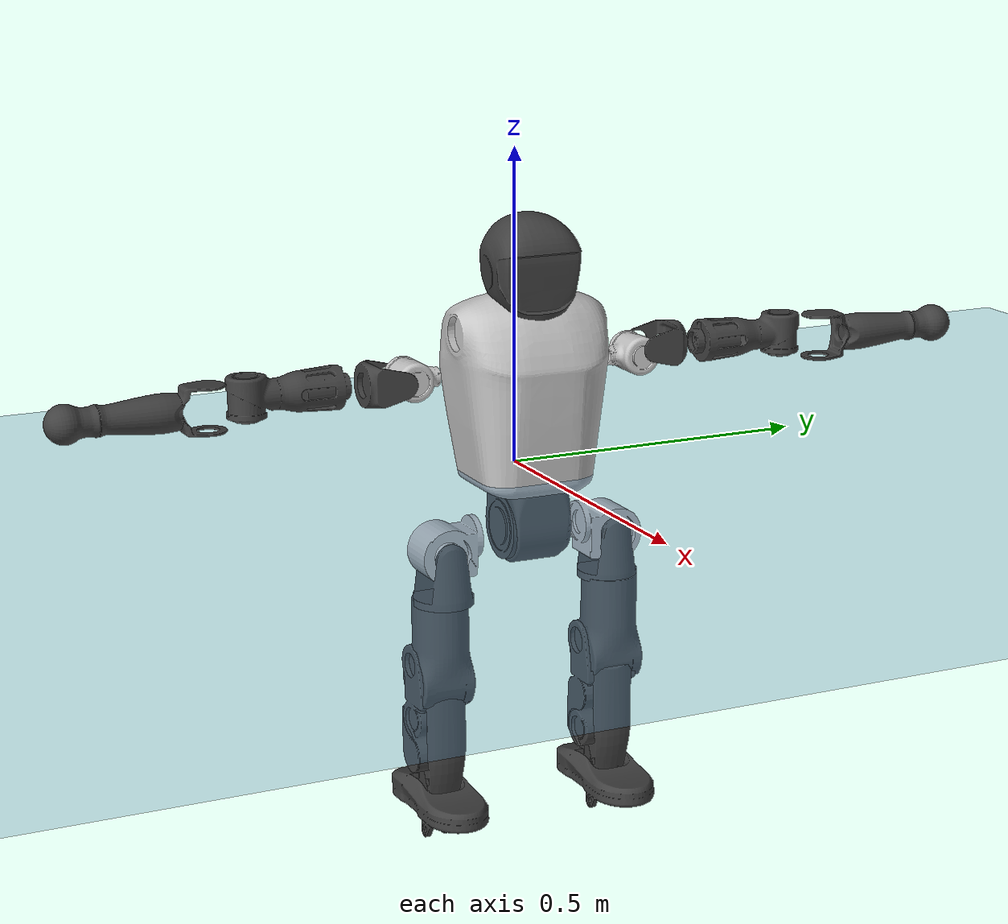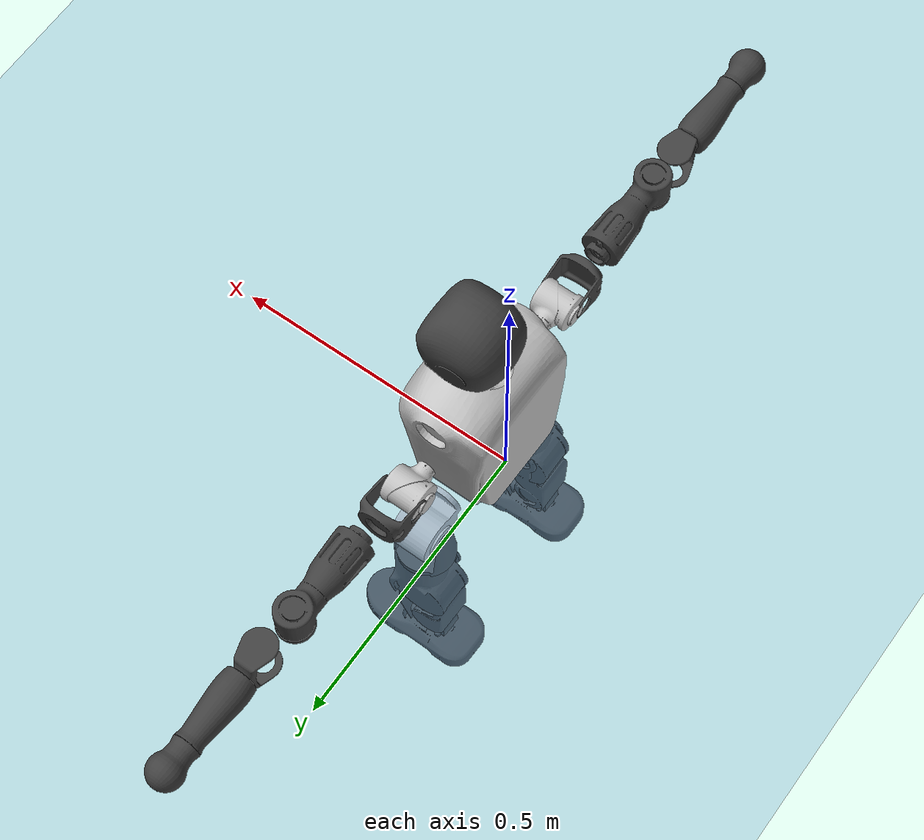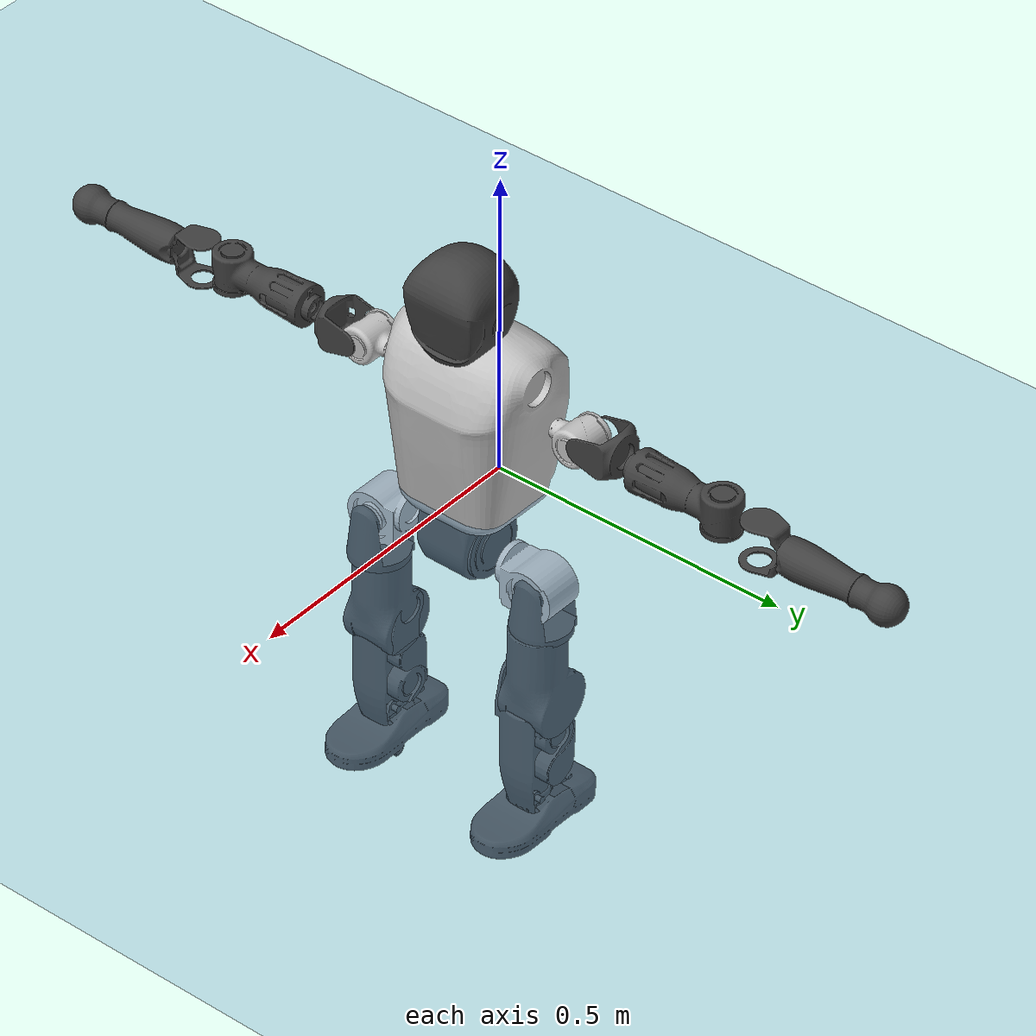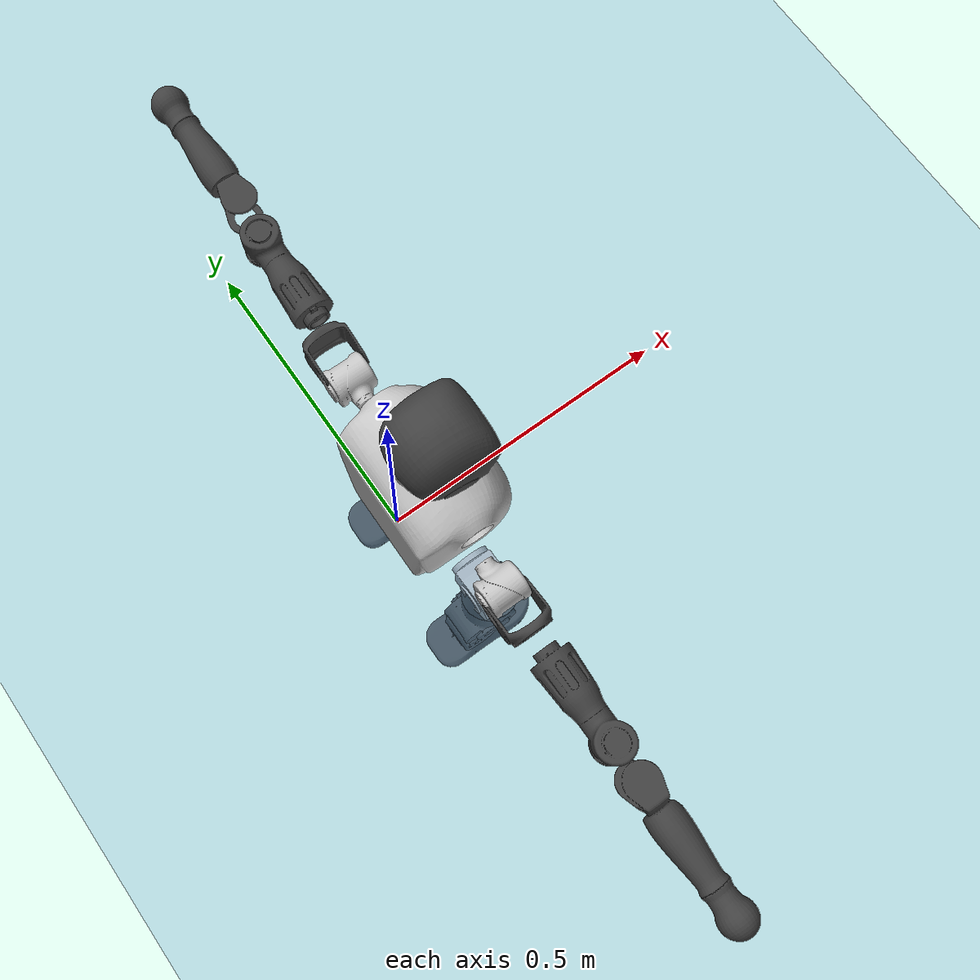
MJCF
<mujoco model="T1">
  <compiler angle="radian" assetdir="assets" balanceinertia="true" inertiafromgeom="false"/>

  <option timestep="0.005" density="1.2" viscosity="2e-05"/>

  <size nkey="1"/>

  <visual>
    <quality shadowsize="8192"/>
    <map shadowclip="0.5"/>
  </visual>

  <default>
    <default class="/">
      <joint armature="0.01" damping="0.01" frictionloss="0.1"/>
      <geom contype="0" conaffinity="0" group="1" solref="-1000 -80"/>
      <site size="0.01 0.005 0.005" group="5"/>
      <general forcelimited="true" biastype="affine" gainprm="25" biasprm="0 -25 -0.6"/>
      <default class="t1">
        <geom rgba="0.25 0.25 0.25 1"/>
        <default class="visual">
          <geom type="mesh" group="2"/>
        </default>
        <default class="collision">
          <geom group="3"/>
        </default>
        <default class="foot">
          <geom size="0.1115 0.05 0.015" type="box" condim="6" group="4" priority="1" solimp="0.015 1 0.015"/>
        </default>
        <default class="reward_collision_sphere">
          <geom group="5" rgba="1 0 0 1"/>
        </default>
      </default>
    </default>
  </default>

  <asset>
    <texture type="skybox" colorspace="auto" name="//unnamed_texture_0" builtin="gradient" rgb1="0.95 0.95 0.95" rgb2="0.95 0.95 0.95" width="100" height="600"/>
    <texture type="2d" colorspace="auto" name="texplane" builtin="checker" rgb1="0.345 0.575 0.748" rgb2="0.345 0.575 0.748" markrgb="1 1 1" width="512" height="512"/>
    <material name="MatPlane" class="/" texture="texplane" texuniform="true" texrepeat="2 2" specular="0.9"/>
    <mesh name="Trunk" class="/" file="Trunk.stl"/>
    <mesh name="H1" class="/" file="H1.stl"/>
    <mesh name="H2" class="/" file="H2.stl"/>
    <mesh name="AL1" class="/" file="AL1.stl"/>
    <mesh name="AL2" class="/" file="AL2.stl"/>
    <mesh name="AL3" class="/" file="AL3.stl"/>
    <mesh name="left_hand_link" class="/" file="left_hand_link.stl"/>
    <mesh name="AR1" class="/" file="AR1.stl"/>
    <mesh name="AR2" class="/" file="AR2.stl"/>
    <mesh name="AR3" class="/" file="AR3.stl"/>
    <mesh name="right_hand_link" class="/" file="right_hand_link.stl"/>
    <mesh name="Waist" class="/" file="Waist.stl"/>
    <mesh name="Hip_Pitch_Left" class="/" file="Hip_Pitch_Left.stl"/>
    <mesh name="Hip_Roll_Left" class="/" file="Hip_Roll_Left.stl"/>
    <mesh name="Hip_Yaw_Left" class="/" file="Hip_Yaw_Left.stl"/>
    <mesh name="Shank_Left" class="/" file="Shank_Left.stl"/>
    <mesh name="Ankle_Cross_Left" class="/" file="Ankle_Cross_Left.stl"/>
    <mesh name="left_foot_link" class="/" file="left_foot_link.stl"/>
    <mesh name="Hip_Pitch_Right" class="/" file="Hip_Pitch_Right.stl"/>
    <mesh name="Hip_Roll_Right" class="/" file="Hip_Roll_Right.stl"/>
    <mesh name="Hip_Yaw_Right" class="/" file="Hip_Yaw_Right.stl"/>
    <mesh name="Shank_Right" class="/" file="Shank_Right.stl"/>
    <mesh name="Ankle_Cross_Right" class="/" file="Ankle_Cross_Right.stl"/>
    <mesh name="right_foot_link" class="/" file="right_foot_link.stl"/>
  </asset>

  <worldbody>
    <geom name="floor" class="/" size="100 100 0.125" type="plane" group="0" material="MatPlane"/>
    <light name="toplight_shadow" class="/" pos="0 0 5" dir="0.0990148 0.0990148 -0.990148" type="directional" ambient="0.04 0.04 0.04" diffuse="0.55 0.55 0.55" specular="0.12 0.12 0.12"/>
    <light name="toplight_fill" class="/" pos="0 0 5" dir="0.0990148 0.0990148 -0.990148" type="directional" castshadow="false" ambient="0.04 0.04 0.04" diffuse="0.3 0.3 0.3" specular="0.08 0.08 0.08"/>
    <body name="trunk" childclass="t1" pos="-0.00126855 -0.00587389 0.0102234" quat="0.999984 -0.00202966 -0.00219623 -0.00472078">
      <inertial pos="0.0571639 -0.000365462 0.0793464" quat="0.99997 -0.00220597 -0.00740266 -8.25885e-06" mass="15.2522" diaginertia="0.118723 0.455089 0.0145954"/>
      <joint name="//unnamed_joint_0" type="free" armature="0" damping="0" frictionloss="0"/>
      <geom name="//unnamed_geom_1" class="visual" rgba="0.76 0.76 0.76 1" mesh="Trunk"/>
      <geom name="//unnamed_geom_2" class="collision" size="0.0792326 0.105643 0.158465" pos="0.0611556 0 0.0887345" type="box"/>
      <geom name="//unnamed_geom_3" class="reward_collision_sphere" size="0.12149" pos="0.0611556 0 0.0739454"/>
      <geom name="//unnamed_geom_4" class="reward_collision_sphere" size="0.0158465" pos="0.0611556 0.1199 0"/>
      <geom name="//unnamed_geom_5" class="reward_collision_sphere" size="0.0158465" pos="0.0611556 -0.1199 0"/>
      <geom name="//unnamed_geom_6" class="reward_collision_sphere" size="0.0158465" pos="0.0611556 0.150933 0.133102"/>
      <geom name="//unnamed_geom_7" class="reward_collision_sphere" size="0.0158465" pos="0.0611556 -0.150933 0.133102"/>
      <site name="imu" pos="0.0501242 -0.00526479 -0.00813554" size="0.0105643"/>
      <camera name="track" pos="0 -2.82118 0" quat="0.707107 0.707107 0 0" mode="trackcom"/>
      <camera name="ego_camera" pos="0.12435 0 0.310571" quat="-0.5 -0.5 0.5 0.5"/>
      <body name="H1" pos="0.0575501 -0.00117623 0.173078" quat="0.999989 0.0026439 -0.0037393 0.00130248">
        <inertial pos="-0.00839108 -0.0061674 0.0413605" quat="0.76442 -0.0187474 -0.00335935 0.644437" mass="0.484623" diaginertia="0.000249993 0.00110744 3.57424e-05"/>
        <joint name="AAHead_yaw" pos="0 0 0" axis="-0.00254525 -0.00615605 0.999978" range="-1.3339 1.59996" armature="0.0111231" damping="0.0267384" frictionloss="0.0904906"/>
        <geom name="//unnamed_geom_8" class="visual" mesh="H1"/>
        <body name="H2" pos="0.000932305 -0.00144469 0.0387764" quat="0.999986 0.000816786 -0.000552602 -0.00526374">
          <inertial pos="0.00737729 0.00150512 0.0716353" quat="0.988481 0.10533 -0.0764616 -0.0772261" mass="0.8613" diaginertia="0.00247022 0.0119393 0.000385468"/>
          <joint name="Head_pitch" pos="0 0 0" axis="-0.047854 -0.998799 -0.0105225" stiffness="0.0174518" range="-1.08198 0.147039" armature="0.00606072" damping="0" frictionloss="0.0489462"/>
          <geom name="//unnamed_geom_9" class="visual" mesh="H2"/>
          <geom name="//unnamed_geom_10" class="collision" size="0.0845147" pos="0.0101926 0 0.08134"/>
          <geom name="//unnamed_geom_11" class="reward_collision_sphere" size="0.0950791" pos="0.0203852 0 0.0739454"/>
        </body>
      </body>
      <body name="AL1" pos="0.0483806 0.144847 0.157547" quat="1 0.000308676 -0.000185885 -0.000204675">
        <inertial pos="0.0102572 0.0667236 0.00386266" quat="0.500546 0.520029 -0.479012 0.499571" mass="0.66702" diaginertia="0.00157462 0.00656417 6.80548e-05"/>
        <joint name="Left_Shoulder_Pitch" pos="0 0 0" axis="-0.00374986 0.999987 -0.00357846" stiffness="0.00427296" range="-3.30763 1.2268" armature="0.010987" damping="0" frictionloss="0.12213"/>
        <geom name="//unnamed_geom_12" class="visual" rgba="0.76 0.76 0.76 1" mesh="AL1"/>
        <body name="AL2" pos="-0.000316302 0.0692629 0.0108495" quat="0.999987 0.00234912 0.00358928 -0.00267277">
          <inertial pos="0.00679452 0.0515337 0.00888049" quat="0.483373 0.522851 -0.492378 0.500541" mass="0.174517" diaginertia="0.000457653 0.00210923 3.92921e-05"/>
          <joint name="Left_Shoulder_Roll" pos="0 0 0" axis="-0.998689 -0.031394 0.0404365" range="-1.5389 1.75731" armature="0.0107709" damping="0.00907575" frictionloss="0.159302"/>
          <geom name="//unnamed_geom_13" class="visual" mesh="AL2"/>
          <body name="AL3" pos="0.0105556 0.0893407 0.00059568" quat="1 0.000266334 0.000540503 -0.000425417">
            <inertial pos="0.000200543 0.120754 -0.00915192" quat="0.706084 0.708113 -0.00262202 0.00382" mass="1.17367" diaginertia="0.0134473 0.0700212 0.000144313"/>
            <joint name="Left_Elbow_Pitch" pos="0 0 0" axis="-0.0456038 -0.998888 0.0119573" range="-2.27633 2.26141" armature="0.0116663" damping="0.00322889" frictionloss="0.0884321"/>
            <geom name="//unnamed_geom_14" class="visual" mesh="AL3"/>
            <geom name="//unnamed_geom_15" class="collision" size="0.031693 0.0792326" pos="0 0.0705294 0" quat="0.707105 0.707108 0 0" type="cylinder"/>
            <geom name="//unnamed_geom_16" class="reward_collision_sphere" size="0.0380316"/>
            <body name="left_hand_link" pos="0.00599369 0.217131 -0.0111503" quat="0.999999 0.00092846 -0.00061416 0.000577919">
              <inertial pos="-0.000576236 0.150751 -0.00642887" quat="0.712656 0.701494 -0.00495559 0.00183275" mass="0.346622" diaginertia="0.00877137 0.0361207 4.08828e-05"/>
              <joint name="Left_Elbow_Yaw" pos="0 0 0" axis="-0.0279566 -0.0346973 0.999007" stiffness="0.0331165" range="-2.47994 0.0365861" armature="0.0111722" damping="0.0170469" frictionloss="0.0754662"/>
              <geom name="//unnamed_geom_17" class="visual" mesh="left_hand_link"/>
              <geom name="//unnamed_geom_18" class="collision" size="0.031693 0.092438" pos="0 0.183376 0" quat="0.707105 0.707108 0 0" type="cylinder"/>
              <geom name="//unnamed_geom_19" class="reward_collision_sphere" size="0.0528217"/>
              <geom name="//unnamed_geom_20" class="reward_collision_sphere" size="0.0369752" pos="0 0.155165 0"/>
              <geom name="//unnamed_geom_21" class="reward_collision_sphere" size="0.0369752" pos="0 0.303277 0"/>
            </body>
          </body>
        </body>
      </body>
      <body name="AR1" pos="0.0512045 -0.147888 0.153584" quat="0.999989 -0.00028333 -6.24743e-05 0.00470737">
        <inertial pos="-0.000726463 -0.0597884 -0.00070072" quat="0.517354 0.486111 -0.509718 0.486034" mass="0.630516" diaginertia="0.00170503 0.00758458 6.53159e-05"/>
        <joint name="Right_Shoulder_Pitch" pos="0 0 0" axis="0.00500953 -0.999976 -0.00477457" stiffness="0.0427919" range="-1.21395 3.19217" armature="0.0113329" damping="0.0475738" frictionloss="0.110766"/>
        <geom name="//unnamed_geom_22" class="visual" rgba="0.76 0.76 0.76 1" mesh="AR1"/>
        <body name="AR2" pos="-0.00108907 -0.0680239 -0.00163339" quat="0.999996 0.00253583 -0.00116096 -9.80621e-06">
          <inertial pos="0.00698734 -0.0522037 -0.00621801" quat="0.511667 0.484359 -0.518819 0.48417" mass="0.210216" diaginertia="0.000380898 0.00192714 4.35472e-05"/>
          <joint name="Right_Shoulder_Roll" pos="0 0 0" axis="-0.99995 -0.00857914 -0.00519467" range="-1.76692 1.59857" armature="0.010172" damping="0" frictionloss="0.0589049"/>
          <geom name="//unnamed_geom_23" class="visual" mesh="AR2"/>
          <body name="AR3" pos="-0.000625151 -0.0935355 0.00184238" quat="1 -4.70753e-05 7.86225e-05 -0.000623242">
            <inertial pos="0.0107328 -0.118332 -0.000731669" quat="0.704163 0.709275 -0.020764 -0.0255472" mass="1.04972" diaginertia="0.0151789 0.0786957 0.000136772"/>
            <joint name="Right_Elbow_Pitch" pos="0 0 0" axis="0.0220207 0.999753 -0.00306621" stiffness="0.0561329" range="-2.28499 2.35491" armature="0.0148892" damping="0.0113171" frictionloss="0.100231"/>
            <geom name="//unnamed_geom_24" class="visual" mesh="AR3"/>
            <geom name="//unnamed_geom_25" class="collision" size="0.031693 0.0792326" pos="0 -0.0705294 0" quat="0.707105 0.707108 0 0" type="cylinder"/>
            <geom name="//unnamed_geom_26" class="reward_collision_sphere" size="0.0380316"/>
            <body name="right_hand_link" pos="-0.000883936 -0.207809 -0.0108565" quat="1 0.000260152 -0.000128168 0.000498206">
              <inertial pos="0.00603849 -0.161764 0.00222799" quat="0.708671 0.705496 0.00101004 -0.0077766" mass="0.407054" diaginertia="0.00910697 0.0493995 4.7419e-05"/>
              <joint name="Right_Elbow_Yaw" pos="0 0 0" axis="0.00731052 0.00738021 0.999946" stiffness="0.00660983" range="-0.023628 2.4261" armature="0.0119615" damping="0.0269793" frictionloss="0.113389"/>
              <geom name="//unnamed_geom_27" class="visual" mesh="right_hand_link"/>
              <geom name="//unnamed_geom_28" class="collision" size="0.031693 0.092438" pos="0 -0.183376 0" quat="0.707105 0.707108 0 0" type="cylinder"/>
              <geom name="//unnamed_geom_29" class="reward_collision_sphere" size="0.0528217"/>
              <geom name="//unnamed_geom_30" class="reward_collision_sphere" size="0.0369752" pos="0 -0.155165 0"/>
              <geom name="//unnamed_geom_31" class="reward_collision_sphere" size="0.0369752" pos="0 -0.303277 0"/>
            </body>
          </body>
        </body>
      </body>
      <body name="Waist" pos="0.0645519 -0.00045523 -0.0923273" quat="1 1.71097e-05 0.000267806 -0.000243237">
        <inertial pos="-0.00225895 0.00161022 0.00240254" quat="0.983053 -0.000445829 -0.183241 -0.00549357" mass="3.01968" diaginertia="0.00627387 0.0258828 0.00111115"/>
        <joint name="Waist" pos="0 0 0" axis="-0.0057505 -0.00038149 0.999983" stiffness="0.0263036" range="-1.43009 1.48287" armature="0.0118434" damping="0.0549867" frictionloss="0.100114"/>
        <geom name="//unnamed_geom_32" class="visual" mesh="Waist"/>
        <body name="Hip_Pitch_Left" pos="0.00311849 0.138156 -0.00929215" quat="0.999999 0.000102558 0.000937926 -0.000715547">
          <inertial pos="0.00651406 -0.00877257 -0.00226902" quat="0.976123 0.216658 0.0156171 0.000185785" mass="1.06074" diaginertia="0.00184998 0.0083271 0.00027773"/>
          <joint name="Left_Hip_Pitch" pos="0 0 0" axis="0.00844762 0.999657 0.0247805" stiffness="0.0386855" range="-1.96037 1.60302" armature="0.0106772" damping="0.0482228" frictionloss="0.150018"/>
          <geom name="//unnamed_geom_33" class="visual" rgba="0.76 0.76 0.76 1" mesh="Hip_Pitch_Left"/>
          <body name="Hip_Roll_Left" pos="-0.00353411 0.00110351 -0.0185701" quat="1 0.000148035 -0.000202894 0.000149845">
            <inertial pos="0.000258913 0.000305172 -0.040019" quat="0.713922 -0.0125426 0.00763761 0.700071" mass="0.408729" diaginertia="0.00175916 0.00725638 0.000106378"/>
            <joint name="Left_Hip_Roll" pos="0 0 0" axis="-0.999937 0.0103092 0.00432773" range="-1.70387 0.184447" armature="0.0102287" damping="0" frictionloss="0.140831"/>
            <geom name="//unnamed_geom_34" class="visual" mesh="Hip_Roll_Left"/>
            <geom name="//unnamed_geom_35" class="reward_collision_sphere" size="0.0581039"/>
            <body name="Hip_Yaw_Left" pos="0.00764553 -8.22387e-05 -0.072255" quat="1 -0.000138414 -0.00028816 0.000104489">
              <inertial pos="-0.00752729 0.00152682 -0.0561868" quat="0.697593 -0.0403707 -0.0220066 0.715017" mass="2.81418" diaginertia="0.024616 0.140898 0.000596352"/>
              <joint name="Left_Hip_Yaw" pos="0 0 0" axis="-0.0312181 -0.0175354 -0.999359" stiffness="0.0570102" range="-1.04343 0.861647" armature="0.0143556" damping="0.0339062" frictionloss="0.153311"/>
              <geom name="//unnamed_geom_36" class="visual" mesh="Hip_Yaw_Left"/>
              <geom name="//unnamed_geom_37" class="collision" size="0.0528217 0.0845147" type="cylinder"/>
              <body name="Shank_Left" pos="-0.00887403 -0.00965812 -0.108086" quat="0.999985 0.004403 -0.00217569 -0.0022151">
                <inertial pos="-0.010319 0.0120385 -0.0893583" quat="0.995447 0.00653842 0.0109023 0.094462" mass="1.89219" diaginertia="0.0326041 0.17965 0.00039767"/>
                <joint name="Left_Knee_Pitch" pos="0 0 0" axis="0.00438707 0.999762 0.0213849" stiffness="0.00111345" range="0.0221822 2.32603" armature="0.00697082" damping="0.0112871" frictionloss="0.156102"/>
                <geom name="//unnamed_geom_38" class="visual" mesh="Shank_Left"/>
                <geom name="//unnamed_geom_39" class="collision" size="0.0528217 0.0792326" pos="0 0 -0.0887345" type="cylinder"/>
                <geom name="//unnamed_geom_40" class="reward_collision_sphere" size="0.0686682"/>
                <body name="Ankle_Cross_Left" pos="0.0108984 0.0025028 -0.208462" quat="1 -0.000244709 0.000221929 8.89914e-05">
                  <inertial pos="-0.00252894 -0.00122333 -0.00428195" quat="0.416676 0.543384 0.592529 0.424293" mass="0.0819347" diaginertia="3.17071e-05 0.000138281 2.48457e-06"/>
                  <joint name="Left_Ankle_Pitch" pos="0 0 0" axis="-0.00185335 0.999609 0.0279164" range="-0.855247 0.527177" armature="0.0115014" damping="0.00390913" frictionloss="0.0964983"/>
                  <geom name="//unnamed_geom_41" class="visual" mesh="Ankle_Cross_Left"/>
                  <body name="left_foot_link" pos="-0.00681383 0.0020528 -0.0109437" quat="0.999996 -0.00162485 -0.00228898 0.000662259">
                    <inertial pos="0.00101699 0.000279253 -0.0182183" quat="-0.000804797 0.620784 0.000337518 0.783981" mass="0.892061" diaginertia="0.00331906 0.0134683 0.000526924"/>
                    <joint name="Left_Ankle_Roll" pos="0 0 0" axis="-0.999678 0.021453 -0.0135283" range="-0.311719 0.370731" armature="0.0107793" damping="0" frictionloss="0.103413"/>
                    <geom name="//unnamed_geom_42" class="visual" mesh="left_foot_link"/>
                    <geom name="left_foot" class="foot" size="0.0757463 0.0331072 0.0136102" pos="0.0101926 0 -0.0110918"/>
                    <geom name="//unnamed_geom_44" class="reward_collision_sphere" size="0.0549346" pos="0.0101926 0 -0.0110918"/>
                    <geom name="//unnamed_geom_45" class="reward_collision_sphere" size="0.031693" pos="0.0968297 -0.0324435 -0.0110918"/>
                    <geom name="//unnamed_geom_46" class="reward_collision_sphere" size="0.031693" pos="-0.0713482 -0.0324435 -0.0110918"/>
                    <site name="left_foot" class="foot" pos="0.0101926 0 -0.0110918" size="0.0105643"/>
                  </body>
                </body>
              </body>
            </body>
          </body>
        </body>
        <body name="Hip_Pitch_Right" pos="0.0069969 -0.150849 -0.00894297" quat="0.999988 0.000348729 -0.00114129 0.00480399">
          <inertial pos="0.000914707 0.0215897 -0.0144481" quat="0.970765 -0.238491 0.027065 -0.00193904" mass="1.18042" diaginertia="0.0019748 0.0080425 0.000256917"/>
          <joint name="Right_Hip_Pitch" pos="0 0 0" axis="-0.00486333 -0.999969 -0.00619101" stiffness="0.0239973" range="-1.68109 1.97534" armature="0.0109297" damping="0" frictionloss="0.0494863"/>
          <geom name="//unnamed_geom_47" class="visual" rgba="0.76 0.76 0.76 1" mesh="Hip_Pitch_Right"/>
          <body name="Hip_Roll_Right" pos="0.00910056 -0.00228646 -0.0222275" quat="1 0.000511133 -0.000114845 0.00048304">
            <inertial pos="0.00343453 0.00034137 -0.0435981" quat="0.708199 -0.00374852 -0.00588495 0.705978" mass="0.452717" diaginertia="0.00220576 0.00820166 0.00011087"/>
            <joint name="Right_Hip_Roll" pos="0 0 0" axis="-0.99977 -0.0192361 -0.00952607" stiffness="0.00326911" range="-0.318609 1.62265" armature="0.00916664" damping="0.0252956" frictionloss="0.0630017"/>
            <geom name="//unnamed_geom_48" class="visual" mesh="Hip_Roll_Right"/>
            <geom name="//unnamed_geom_49" class="reward_collision_sphere" size="0.0581039"/>
            <body name="Hip_Yaw_Right" pos="-0.00789962 -0.0023653 -0.0689872" quat="1 -0.000392526 -0.000568043 0.000435281">
              <inertial pos="0.00106863 -0.0116569 -0.0664305" quat="0.711232 -0.0362512 -0.0394589 0.700912" mass="3.01225" diaginertia="0.0286319 0.157356 0.00067828"/>
              <joint name="Right_Hip_Yaw" pos="0 0 0" axis="-0.0125566 0.00189879 -0.999919" range="-1.00562 1.02039" armature="0.0111657" damping="0" frictionloss="0.108217"/>
              <geom name="//unnamed_geom_50" class="visual" mesh="Hip_Yaw_Right"/>
              <geom name="//unnamed_geom_51" class="collision" size="0.0528217 0.0845147" type="cylinder"/>
              <body name="Shank_Right" pos="-0.0167033 -0.00244324 -0.109935" quat="1 0.000437352 0.000414644 -0.000203052">
                <inertial pos="0.00617757 -0.00256601 -0.0845266" quat="0.996523 -0.0321818 -0.0661749 -0.0390887" mass="2.20225" diaginertia="0.0440799 0.201636 0.00050201"/>
                <joint name="Right_Knee_Pitch" pos="0 0 0" axis="-0.000279333 -1 0.000330731" range="-2.34259 0.183578" armature="0.011616" damping="0.00773547" frictionloss="0.139675"/>
                <geom name="//unnamed_geom_52" class="visual" mesh="Shank_Right"/>
                <geom name="//unnamed_geom_53" class="collision" size="0.0528217 0.0792326" pos="0 0 -0.0887345" type="cylinder"/>
                <geom name="//unnamed_geom_54" class="reward_collision_sphere" size="0.0686682"/>
                <body name="Ankle_Cross_Right" pos="0.00436867 0.00368654 -0.198366" quat="0.999999 0.000789964 -0.000439279 0.000743051">
                  <inertial pos="-0.0060427 0.00453003 -0.00749394" quat="0.450542 0.531331 0.556163 0.453191" mass="0.0931121" diaginertia="3.30864e-05 0.000144771 2.55346e-06"/>
                  <joint name="Right_Ankle_Pitch" pos="0 0 0" axis="-0.00509787 -0.999955 -0.00801326" stiffness="0.00144831" range="-0.590922 0.755554" armature="0.0103614" damping="0" frictionloss="0.11173"/>
                  <geom name="//unnamed_geom_55" class="visual" mesh="Ankle_Cross_Right"/>
                  <body name="right_foot_link" pos="-0.00105019 -0.000175023 -0.0147149" quat="0.999999 -0.000235618 -0.000952275 -0.000231315">
                    <inertial pos="0.000846656 0.00277993 -0.0178179" quat="-0.000144149 0.619627 -0.000347051 0.784897" mass="0.808603" diaginertia="0.00291056 0.0143064 0.000493261"/>
                    <joint name="Right_Ankle_Roll" pos="0 0 0" axis="-0.999988 -0.00270805 -0.00407041" range="-0.41465 0.476317" armature="0.0110508" damping="0.0203371" frictionloss="0.0423856"/>
                    <geom name="//unnamed_geom_56" class="visual" mesh="right_foot_link"/>
                    <geom name="right_foot" class="foot" size="0.089076 0.0754973 0.00874492" pos="0.0101926 0 -0.0110918"/>
                    <geom name="//unnamed_geom_58" class="reward_collision_sphere" size="0.0422574"/>
                    <geom name="//unnamed_geom_59" class="reward_collision_sphere" size="0.031693" pos="0.0101926 0 -0.0110918"/>
                    <geom name="//unnamed_geom_60" class="reward_collision_sphere" size="0.031693" pos="0.0968297 0.0324435 -0.0110918"/>
                    <geom name="//unnamed_geom_61" class="reward_collision_sphere" size="0.031693" pos="-0.0713482 0.0324435 -0.0110918"/>
                    <site name="right_foot" class="foot" pos="0.0101926 0 -0.0110918" size="0.0105643"/>
                  </body>
                </body>
              </body>
            </body>
          </body>
        </body>
      </body>
    </body>
  </worldbody>

  <contact>
    <pair class="/" geom1="floor" geom2="left_foot" name="//unnamed_contact_0"/>
    <pair class="/" geom1="floor" geom2="right_foot" name="//unnamed_contact_1"/>
  </contact>

  <actuator>
    <general name="AAHead_yaw" class="/" joint="AAHead_yaw" forcerange="-7.46822 7.46822" gainprm="21.4344" biasprm="0 -21.4344 -0.65068"/>
    <general name="Head_pitch" class="/" joint="Head_pitch" forcerange="-6.35274 6.35274" gainprm="21.4344" biasprm="0 -21.4344 -0.65068"/>
    <general name="Left_Shoulder_Pitch" class="/" joint="Left_Shoulder_Pitch" forcerange="-21.4698 21.4698" gainprm="21.4344" biasprm="0 -21.4344 -0.65068"/>
    <general name="Left_Shoulder_Roll" class="/" joint="Left_Shoulder_Roll" forcerange="-18.0264 18.0264" gainprm="21.4344" biasprm="0 -21.4344 -0.65068"/>
    <general name="Left_Elbow_Pitch" class="/" joint="Left_Elbow_Pitch" forcerange="-25.1983 25.1983" gainprm="21.4344" biasprm="0 -21.4344 -0.65068"/>
    <general name="Left_Elbow_Yaw" class="/" joint="Left_Elbow_Yaw" forcerange="-18.9087 18.9087" gainprm="21.4344" biasprm="0 -21.4344 -0.65068"/>
    <general name="Right_Shoulder_Pitch" class="/" joint="Right_Shoulder_Pitch" forcerange="-18.753 18.753" gainprm="21.4344" biasprm="0 -21.4344 -0.65068"/>
    <general name="Right_Shoulder_Roll" class="/" joint="Right_Shoulder_Roll" forcerange="-15.2676 15.2676" gainprm="21.4344" biasprm="0 -21.4344 -0.65068"/>
    <general name="Right_Elbow_Pitch" class="/" joint="Right_Elbow_Pitch" forcerange="-19.3971 19.3971" gainprm="21.4344" biasprm="0 -21.4344 -0.65068"/>
    <general name="Right_Elbow_Yaw" class="/" joint="Right_Elbow_Yaw" forcerange="-20.1549 20.1549" gainprm="21.4344" biasprm="0 -21.4344 -0.65068"/>
    <general name="Waist" class="/" joint="Waist" forcerange="-30.4831 30.4831" gainprm="21.4344" biasprm="0 -21.4344 -0.65068"/>
    <general name="Left_Hip_Pitch" class="/" joint="Left_Hip_Pitch" forcerange="-48.6785 48.6785" gainprm="21.4344" biasprm="0 -21.4344 -0.65068"/>
    <general name="Left_Hip_Roll" class="/" joint="Left_Hip_Roll" forcerange="-19.0255 19.0255" gainprm="21.4344" biasprm="0 -21.4344 -0.65068"/>
    <general name="Left_Hip_Yaw" class="/" joint="Left_Hip_Yaw" forcerange="-38.2866 38.2866" gainprm="21.4344" biasprm="0 -21.4344 -0.65068"/>
    <general name="Left_Knee_Pitch" class="/" joint="Left_Knee_Pitch" forcerange="-39.4094 39.4094" gainprm="21.4344" biasprm="0 -21.4344 -0.65068"/>
    <general name="Left_Ankle_Pitch" class="/" joint="Left_Ankle_Pitch" forcerange="-25.3548 25.3548" gainprm="21.4344" biasprm="0 -21.4344 -0.65068"/>
    <general name="Left_Ankle_Roll" class="/" joint="Left_Ankle_Roll" forcerange="-18.6728 18.6728" gainprm="21.4344" biasprm="0 -21.4344 -0.65068"/>
    <general name="Right_Hip_Pitch" class="/" joint="Right_Hip_Pitch" forcerange="-63.8044 63.8044" gainprm="21.4344" biasprm="0 -21.4344 -0.65068"/>
    <general name="Right_Hip_Roll" class="/" joint="Right_Hip_Roll" forcerange="-30.9868 30.9868" gainprm="21.4344" biasprm="0 -21.4344 -0.65068"/>
    <general name="Right_Hip_Yaw" class="/" joint="Right_Hip_Yaw" forcerange="-24.8185 24.8185" gainprm="21.4344" biasprm="0 -21.4344 -0.65068"/>
    <general name="Right_Knee_Pitch" class="/" joint="Right_Knee_Pitch" forcerange="-66.3343 66.3343" gainprm="21.4344" biasprm="0 -21.4344 -0.65068"/>
    <general name="Right_Ankle_Pitch" class="/" joint="Right_Ankle_Pitch" forcerange="-21.89 21.89" gainprm="21.4344" biasprm="0 -21.4344 -0.65068"/>
    <general name="Right_Ankle_Roll" class="/" joint="Right_Ankle_Roll" forcerange="-14.9862 14.9862" gainprm="21.4344" biasprm="0 -21.4344 -0.65068"/>
  </actuator>

  <sensor>
    <gyro site="imu" name="imu_angular_velocity"/>
    <velocimeter site="imu" name="imu_linear_velocity"/>
    <framelinvel objtype="site" objname="left_foot" name="left_foot_global_linear_velocity"/>
    <framelinvel objtype="site" objname="right_foot" name="right_foot_global_linear_velocity"/>
  </sensor>

  <keyframe>
    <key name="home" qpos="0 0 0.6385 1 0 0 0 0 0 0 1.4 0 -0.4 0 -1.4 0 0.4 0 -0.4 0 0 0.8 -0.4 0 0.4 0 0 -0.8 0.4 0"/>
  </keyframe>
</mujoco>
